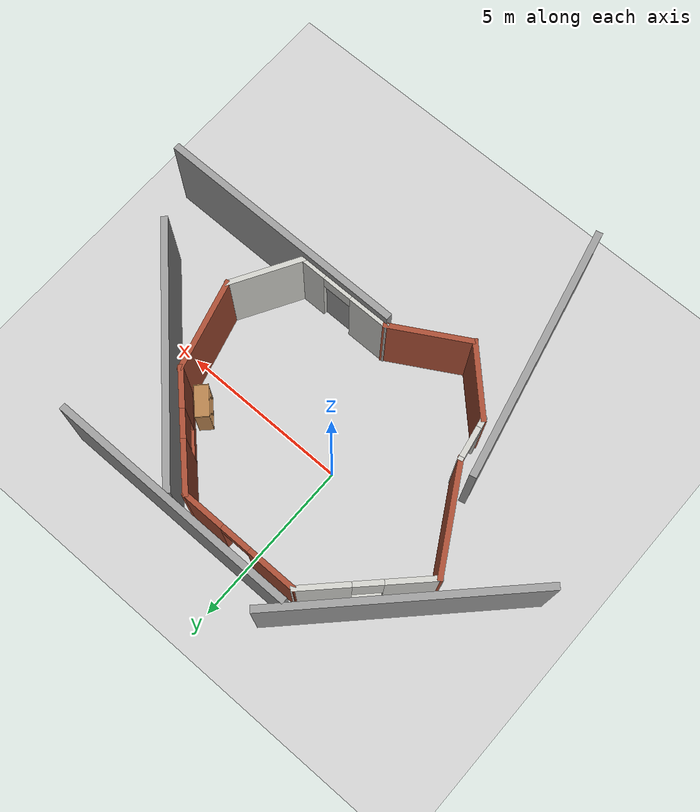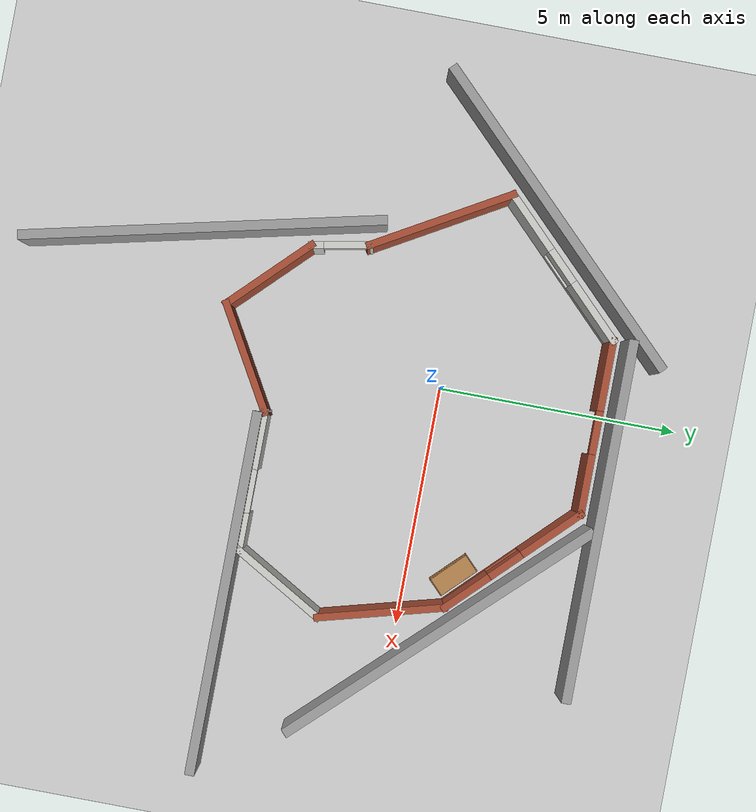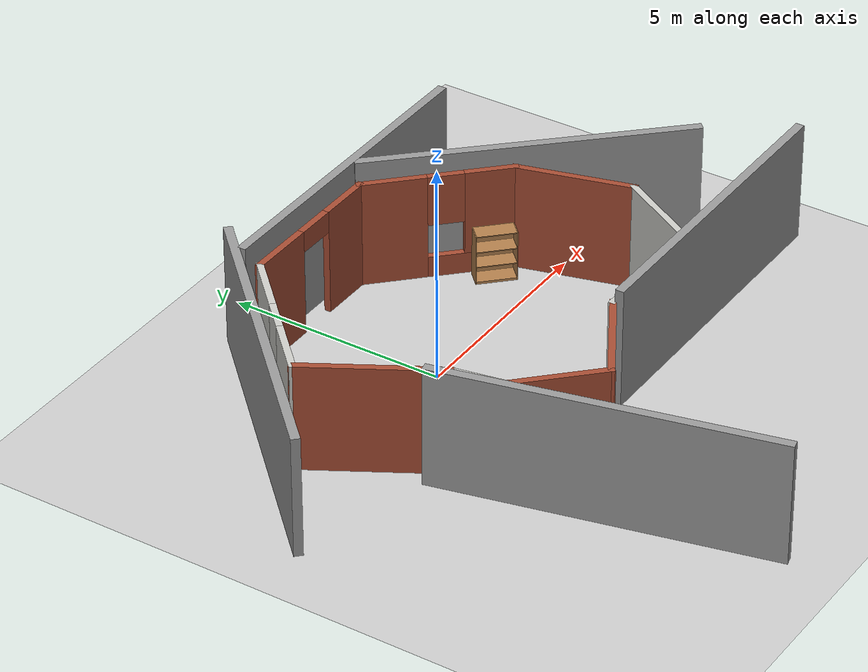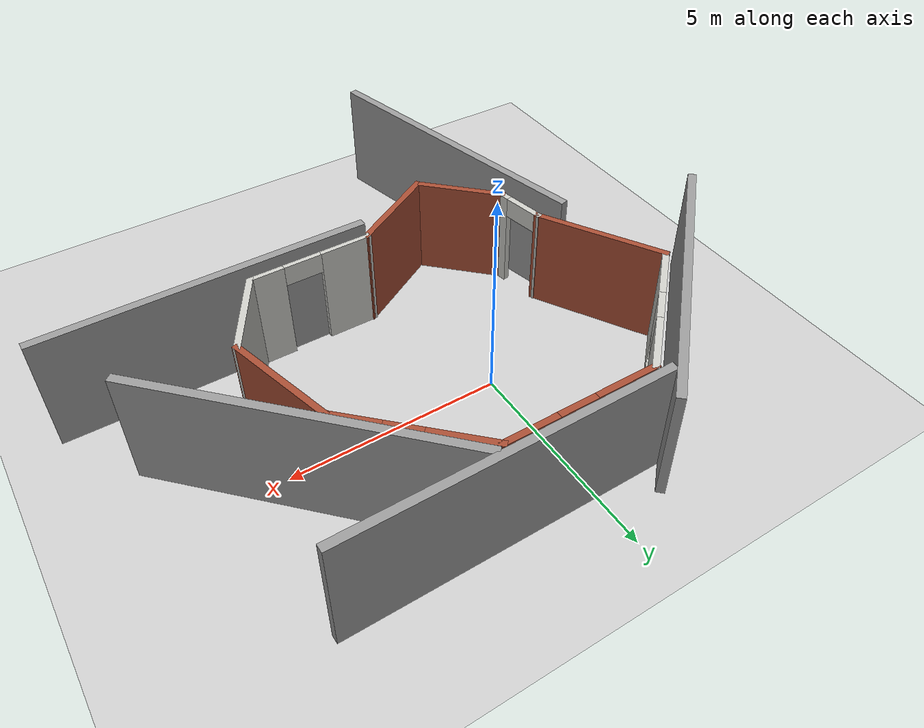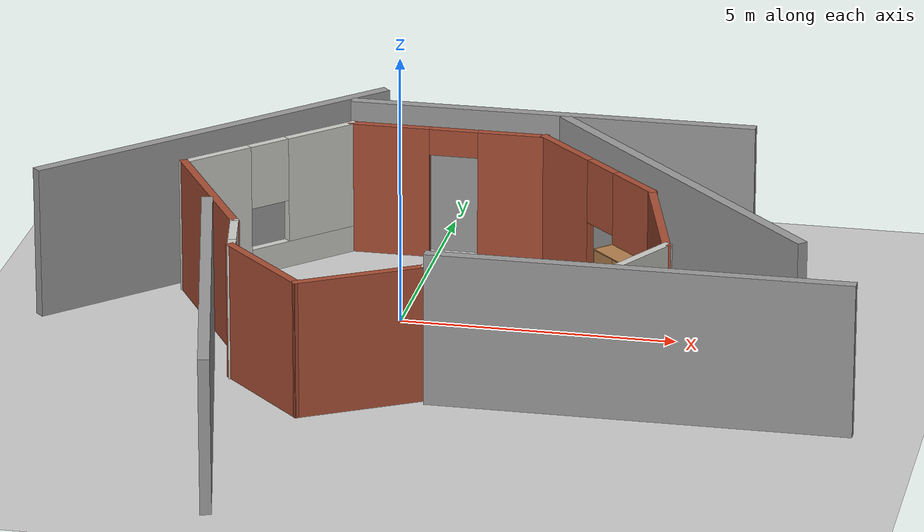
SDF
<sdf version="1.7">
 <world name="default">
  <light name="sun" type="directional">
   <pose>0 0 10 0 -0 0</pose>
   <diffuse>0.8 0.8 0.8 1</diffuse>
   <specular>0.2 0.2 0.2 1</specular>
   <attenuation>
    <range>1000</range>
    <constant>0.9</constant>
    <linear>0.01</linear>
    <quadratic>0.001</quadratic>
   </attenuation>
   <direction>-0.5 0.1 -0.9</direction>
   <spot><inner_angle>0</inner_angle><outer_angle>0</outer_angle><falloff>0</falloff></spot>
  </light>
  <model name="ground_plane">
   <static>1</static>
   <link name="link">
    <collision name="collision">
     <geometry><plane><normal>0 0 1</normal><size>100 100</size></plane></geometry>
     <surface>
      <contact><collide_bitmask>65535</collide_bitmask></contact>
      <friction><ode><mu>100</mu><mu2>50</mu2></ode></friction>
     </surface>
    </collision>
    <visual name="visual">
     <cast_shadows>0</cast_shadows>
     <geometry><plane><normal>0 0 1</normal><size>100 100</size></plane></geometry>
     <material>
      <script><uri>file://media/materials/scripts/gazebo.material</uri><name>Gazebo/Grey</name></script>
     </material>
    </visual>
   </link>
  </model>
  <gravity>0 0 -9.8</gravity>
  <magnetic_field>6e-06 2.3e-05 -4.2e-05</magnetic_field>
  <atmosphere type="adiabatic"/>
  <physics type="ode">
   <max_step_size>0.001</max_step_size>
   <real_time_factor>1</real_time_factor>
   <real_time_update_rate>1000</real_time_update_rate>
  </physics>
  <scene><ambient>0.4 0.4 0.4 1</ambient><background>0.7 0.7 0.7 1</background><shadows>1</shadows></scene>
  <audio><device>default</device></audio>
  <spherical_coordinates>
   <surface_model>EARTH_WGS84</surface_model>
   <latitude_deg>0</latitude_deg>
   <longitude_deg>0</longitude_deg>
   <elevation>0</elevation>
   <heading_deg>0</heading_deg>
  </spherical_coordinates>
  <model name="Untitled">
   <pose>0.46527 -0.68445 0 0 -0 0</pose>
   <link name="Wall_0">
    <collision name="Wall_0_Collision">
     <geometry><box><size>3.25 0.15 2.5</size></box></geometry>
     <pose>0 0 1.25 0 -0 0</pose>
    </collision>
    <visual name="Wall_0_Visual">
     <pose>0 0 1.25 0 -0 0</pose>
     <geometry><box><size>3.25 0.15 2.5</size></box></geometry>
     <material>
      <script><uri>file://media/materials/scripts/gazebo.material</uri><name>Gazebo/Bricks</name></script>
      <ambient>1 1 1 1</ambient>
     </material>
     <meta><layer>0</layer></meta>
    </visual>
    <pose>-3.81685 0.04901 0 0 -0 2.0944</pose>
   </link>
   <link name="Wall_1">
    <pose>-3.31906 2.66414 0 0 -0 0.785398</pose>
    <visual name="Wall_1_Visual_0">
     <pose>-1.15333 0 1.25 0 -0 0</pose>
     <geometry><box><size>1.44334 0.15 2.5</size></box></geometry>
     <material>
      <script><uri>file://media/materials/scripts/gazebo.material</uri><name>Gazebo/CeilingTiled</name></script>
      <ambient>1 1 1 1</ambient>
     </material>
     <meta><layer>0</layer></meta>
    </visual>
    <collision name="Wall_1_Collision_0">
     <geometry><box><size>1.44334 0.15 2.5</size></box></geometry>
     <pose>-1.15333 0 1.25 0 -0 0</pose>
    </collision>
    <visual name="Wall_1_Visual_1">
     <pose>0.72167 0 0.25 0 -0 0</pose>
     <geometry><box><size>2.30666 0.15 0.5</size></box></geometry>
     <material>
      <script><uri>file://media/materials/scripts/gazebo.material</uri><name>Gazebo/CeilingTiled</name></script>
      <ambient>1 1 1 1</ambient>
     </material>
     <meta><layer>0</layer></meta>
    </visual>
    <collision name="Wall_1_Collision_1">
     <geometry><box><size>2.30666 0.15 0.5</size></box></geometry>
     <pose>0.72167 0 0.25 0 -0 0</pose>
    </collision>
    <visual name="Wall_1_Visual_2">
     <pose>1.12167 0 1.5 0 -0 0</pose>
     <geometry><box><size>1.50666 0.15 2</size></box></geometry>
     <material>
      <script><uri>file://media/materials/scripts/gazebo.material</uri><name>Gazebo/CeilingTiled</name></script>
      <ambient>1 1 1 1</ambient>
     </material>
     <meta><layer>0</layer></meta>
    </visual>
    <collision name="Wall_1_Collision_2">
     <geometry><box><size>1.50666 0.15 2</size></box></geometry>
     <pose>1.12167 0 1.5 0 -0 0</pose>
    </collision>
    <visual name="Wall_1_Visual_3">
     <pose>-0.031659 0 1.9 0 -0 0</pose>
     <geometry><box><size>0.8 0.15 1.2</size></box></geometry>
     <material>
      <script><uri>file://media/materials/scripts/gazebo.material</uri><name>Gazebo/CeilingTiled</name></script>
      <ambient>1 1 1 1</ambient>
     </material>
     <meta><layer>0</layer></meta>
    </visual>
    <collision name="Wall_1_Collision_3">
     <geometry><box><size>0.8 0.15 1.2</size></box></geometry>
     <pose>-0.031659 0 1.9 0 -0 0</pose>
    </collision>
   </link>
   <link name="Wall_10">
    <pose>-2.93323 -1.87267 0 0 -0 1.75613</pose>
    <visual name="Wall_10_Visual_0">
     <pose>-0.50504 0 1.25 0 -0 0</pose>
     <geometry><box><size>0.31879 0.15 2.5</size></box></geometry>
     <material>
      <script><uri>file://media/materials/scripts/gazebo.material</uri><name>Gazebo/CeilingTiled</name></script>
      <ambient>1 1 1 1</ambient>
     </material>
     <meta><layer>0</layer></meta>
    </visual>
    <collision name="Wall_10_Collision_0">
     <geometry><box><size>0.31879 0.15 2.5</size></box></geometry>
     <pose>-0.50504 0 1.25 0 -0 0</pose>
    </collision>
    <visual name="Wall_10_Visual_1">
     <pose>0.609395 0 1.25 0 -0 0</pose>
     <geometry><box><size>0.110079 0.15 2.5</size></box></geometry>
     <material>
      <script><uri>file://media/materials/scripts/gazebo.material</uri><name>Gazebo/CeilingTiled</name></script>
      <ambient>1 1 1 1</ambient>
     </material>
     <meta><layer>0</layer></meta>
    </visual>
    <collision name="Wall_10_Collision_1">
     <geometry><box><size>0.110079 0.15 2.5</size></box></geometry>
     <pose>0.609395 0 1.25 0 -0 0</pose>
    </collision>
    <visual name="Wall_10_Visual_2">
     <pose>0.104355 0 2.25 0 -0 0</pose>
     <geometry><box><size>0.9 0.15 0.5</size></box></geometry>
     <material>
      <script><uri>file://media/materials/scripts/gazebo.material</uri><name>Gazebo/CeilingTiled</name></script>
      <ambient>1 1 1 1</ambient>
     </material>
     <meta><layer>0</layer></meta>
    </visual>
    <collision name="Wall_10_Collision_2">
     <geometry><box><size>0.9 0.15 0.5</size></box></geometry>
     <pose>0.104355 0 2.25 0 -0 0</pose>
    </collision>
   </link>
   <link name="Wall_2">
    <pose>-0.246269 3.93693 0 0 -0 0</pose>
    <visual name="Wall_2_Visual_0">
     <pose>-1.11069 0 1.25 0 -0 0</pose>
     <geometry><box><size>1.52861 0.15 2.5</size></box></geometry>
     <material>
      <script><uri>file://media/materials/scripts/gazebo.material</uri><name>Gazebo/Bricks</name></script>
      <ambient>1 1 1 1</ambient>
     </material>
     <meta><layer>0</layer></meta>
    </visual>
    <collision name="Wall_2_Collision_0">
     <geometry><box><size>1.52861 0.15 2.5</size></box></geometry>
     <pose>-1.11069 0 1.25 0 -0 0</pose>
    </collision>
    <visual name="Wall_2_Visual_1">
     <pose>1.21431 0 1.25 0 -0 0</pose>
     <geometry><box><size>1.32139 0.15 2.5</size></box></geometry>
     <material>
      <script><uri>file://media/materials/scripts/gazebo.material</uri><name>Gazebo/Bricks</name></script>
      <ambient>1 1 1 1</ambient>
     </material>
     <meta><layer>0</layer></meta>
    </visual>
    <collision name="Wall_2_Collision_1">
     <geometry><box><size>1.32139 0.15 2.5</size></box></geometry>
     <pose>1.21431 0 1.25 0 -0 0</pose>
    </collision>
    <visual name="Wall_2_Visual_2">
     <pose>0.103612 0 2.25 0 -0 0</pose>
     <geometry><box><size>0.9 0.15 0.5</size></box></geometry>
     <material>
      <script><uri>file://media/materials/scripts/gazebo.material</uri><name>Gazebo/Bricks</name></script>
      <ambient>1 1 1 1</ambient>
     </material>
     <meta><layer>0</layer></meta>
    </visual>
    <collision name="Wall_2_Collision_2">
     <geometry><box><size>0.9 0.15 0.5</size></box></geometry>
     <pose>0.103612 0 2.25 0 -0 0</pose>
    </collision>
   </link>
   <link name="Wall_3">
    <pose>2.73814 2.75253 0 0 -0 -0.785398</pose>
    <visual name="Wall_3_Visual_0">
     <pose>-0.989201 0 1.25 0 -0 0</pose>
     <geometry><box><size>1.5216 0.15 2.5</size></box></geometry>
     <material>
      <script><uri>file://media/materials/scripts/gazebo.material</uri><name>Gazebo/Bricks</name></script>
      <ambient>1 1 1 1</ambient>
     </material>
     <meta><layer>0</layer></meta>
    </visual>
    <collision name="Wall_3_Collision_0">
     <geometry><box><size>1.5216 0.15 2.5</size></box></geometry>
     <pose>-0.989201 0 1.25 0 -0 0</pose>
    </collision>
    <visual name="Wall_3_Visual_1">
     <pose>0.760799 0 0.25 0 -0 0</pose>
     <geometry><box><size>1.9784 0.15 0.5</size></box></geometry>
     <material>
      <script><uri>file://media/materials/scripts/gazebo.material</uri><name>Gazebo/Bricks</name></script>
      <ambient>1 1 1 1</ambient>
     </material>
     <meta><layer>0</layer></meta>
    </visual>
    <collision name="Wall_3_Collision_1">
     <geometry><box><size>1.9784 0.15 0.5</size></box></geometry>
     <pose>0.760799 0 0.25 0 -0 0</pose>
    </collision>
    <visual name="Wall_3_Visual_2">
     <pose>1.1608 0 1.5 0 -0 0</pose>
     <geometry><box><size>1.1784 0.15 2</size></box></geometry>
     <material>
      <script><uri>file://media/materials/scripts/gazebo.material</uri><name>Gazebo/Bricks</name></script>
      <ambient>1 1 1 1</ambient>
     </material>
     <meta><layer>0</layer></meta>
    </visual>
    <collision name="Wall_3_Collision_2">
     <geometry><box><size>1.1784 0.15 2</size></box></geometry>
     <pose>1.1608 0 1.5 0 -0 0</pose>
    </collision>
    <visual name="Wall_3_Visual_3">
     <pose>0.171599 0 1.9 0 -0 0</pose>
     <geometry><box><size>0.8 0.15 1.2</size></box></geometry>
     <material>
      <script><uri>file://media/materials/scripts/gazebo.material</uri><name>Gazebo/Bricks</name></script>
      <ambient>1 1 1 1</ambient>
     </material>
     <meta><layer>0</layer></meta>
    </visual>
    <collision name="Wall_3_Collision_3">
     <geometry><box><size>0.8 0.15 1.2</size></box></geometry>
     <pose>0.171599 0 1.9 0 -0 0</pose>
    </collision>
   </link>
   <link name="Wall_4">
    <collision name="Wall_4_Collision">
     <geometry><box><size>2.75 0.15 2.5</size></box></geometry>
     <pose>0 0 1.25 0 -0 0</pose>
    </collision>
    <visual name="Wall_4_Visual">
     <pose>0 0 1.25 0 -0 0</pose>
     <geometry><box><size>2.75 0.15 2.5</size></box></geometry>
     <material>
      <script><uri>file://media/materials/scripts/gazebo.material</uri><name>Gazebo/Bricks</name></script>
      <ambient>1 1 1 1</ambient>
     </material>
     <meta><layer>0</layer></meta>
    </visual>
    <pose>4.259 0.312423 0 0 -0 -1.309</pose>
   </link>
   <link name="Wall_5">
    <collision name="Wall_5_Collision">
     <geometry><box><size>2.25 0.15 2.5</size></box></geometry>
     <pose>0 0 1.25 0 -0 0</pose>
    </collision>
    <visual name="Wall_5_Visual">
     <pose>0 0 1.25 0 -0 0</pose>
     <geometry><box><size>2.25 0.15 2.5</size></box></geometry>
     <material>
      <script><uri>file://media/materials/scripts/gazebo.material</uri><name>Gazebo/CeilingTiled</name></script>
      <ambient>1 1 1 1</ambient>
     </material>
     <meta><layer>0</layer></meta>
    </visual>
    <pose>4.07047 -1.85261 0 0 -0 -2.0944</pose>
   </link>
   <link name="Wall_6">
    <pose>2.12047 -2.76193 0 0 -0 3.14159</pose>
    <visual name="Wall_6_Visual_0">
     <pose>-1.07632 0 1.25 0 -0 0</pose>
     <geometry><box><size>0.847358 0.15 2.5</size></box></geometry>
     <material>
      <script><uri>file://media/materials/scripts/gazebo.material</uri><name>Gazebo/CeilingTiled</name></script>
      <ambient>1 1 1 1</ambient>
     </material>
     <meta><layer>0</layer></meta>
    </visual>
    <collision name="Wall_6_Collision_0">
     <geometry><box><size>0.847358 0.15 2.5</size></box></geometry>
     <pose>-1.07632 0 1.25 0 -0 0</pose>
    </collision>
    <visual name="Wall_6_Visual_1">
     <pose>0.873679 0 1.25 0 -0 0</pose>
     <geometry><box><size>1.25264 0.15 2.5</size></box></geometry>
     <material>
      <script><uri>file://media/materials/scripts/gazebo.material</uri><name>Gazebo/CeilingTiled</name></script>
      <ambient>1 1 1 1</ambient>
     </material>
     <meta><layer>0</layer></meta>
    </visual>
    <collision name="Wall_6_Collision_1">
     <geometry><box><size>1.25264 0.15 2.5</size></box></geometry>
     <pose>0.873679 0 1.25 0 -0 0</pose>
    </collision>
    <visual name="Wall_6_Visual_2">
     <pose>-0.202642 0 2.25 0 -0 0</pose>
     <geometry><box><size>0.9 0.15 0.5</size></box></geometry>
     <material>
      <script><uri>file://media/materials/scripts/gazebo.material</uri><name>Gazebo/CeilingTiled</name></script>
      <ambient>1 1 1 1</ambient>
     </material>
     <meta><layer>0</layer></meta>
    </visual>
    <collision name="Wall_6_Collision_2">
     <geometry><box><size>0.9 0.15 0.5</size></box></geometry>
     <pose>-0.202642 0 2.25 0 -0 0</pose>
    </collision>
   </link>
   <link name="Wall_8">
    <collision name="Wall_8_Collision">
     <geometry><box><size>2.5 0.15 2.5</size></box></geometry>
     <pose>0 0 1.25 0 -0 0</pose>
    </collision>
    <visual name="Wall_8_Visual">
     <pose>0 0 1.25 0 -0 0</pose>
     <geometry><box><size>2.5 0.15 2.5</size></box></geometry>
     <material>
      <script><uri>file://media/materials/scripts/gazebo.material</uri><name>Gazebo/Bricks</name></script>
      <ambient>1 1 1 1</ambient>
     </material>
     <meta><layer>0</layer></meta>
    </visual>
    <pose>-0.322112 -3.34943 0 0 -0 -2.61799</pose>
   </link>
   <link name="Wall_9">
    <collision name="Wall_9_Collision">
     <geometry><box><size>2.25 0.15 2.5</size></box></geometry>
     <pose>0 0 1.25 0 -0 0</pose>
    </collision>
    <visual name="Wall_9_Visual">
     <pose>0 0 1.25 0 -0 0</pose>
     <geometry><box><size>2.25 0.15 2.5</size></box></geometry>
     <material>
      <script><uri>file://media/materials/scripts/gazebo.material</uri><name>Gazebo/Bricks</name></script>
      <ambient>1 1 1 1</ambient>
     </material>
     <meta><layer>0</layer></meta>
    </visual>
    <pose>-2.08215 -3.19447 0 0 -0 2.35619</pose>
   </link>
   <static>1</static>
  </model>
  <model name="bookshelf">
   <static>1</static>
   <link name="link">
    <inertial><mass>1</mass></inertial>
    <collision name="back">
     <pose>0 0.005 0.6 0 -0 0</pose>
     <geometry><box><size>0.9 0.01 1.2</size></box></geometry>
    </collision>
    <visual name="visual1">
     <pose>0 0.005 0.6 0 -0 0</pose>
     <geometry><box><size>0.9 0.01 1.2</size></box></geometry>
     <material>
      <script><uri>file://media/materials/scripts/gazebo.material</uri><name>Gazebo/Wood</name></script>
     </material>
    </visual>
    <collision name="left_side">
     <pose>0.45 -0.195 0.6 0 -0 0</pose>
     <geometry><box><size>0.02 0.4 1.2</size></box></geometry>
    </collision>
    <visual name="visual2">
     <pose>0.45 -0.195 0.6 0 -0 0</pose>
     <geometry><box><size>0.02 0.4 1.2</size></box></geometry>
     <material>
      <script><uri>file://media/materials/scripts/gazebo.material</uri><name>Gazebo/Wood</name></script>
     </material>
    </visual>
    <collision name="right_side">
     <pose>-0.45 -0.195 0.6 0 -0 0</pose>
     <geometry><box><size>0.02 0.4 1.2</size></box></geometry>
    </collision>
    <visual name="visual3">
     <pose>-0.45 -0.195 0.6 0 -0 0</pose>
     <geometry><box><size>0.02 0.4 1.2</size></box></geometry>
     <material>
      <script><uri>file://media/materials/scripts/gazebo.material</uri><name>Gazebo/Wood</name></script>
     </material>
    </visual>
    <collision name="bottom">
     <pose>0 -0.195 0.03 0 -0 0</pose>
     <geometry><box><size>0.88 0.4 0.06</size></box></geometry>
    </collision>
    <visual name="visual4">
     <pose>0 -0.195 0.03 0 -0 0</pose>
     <geometry><box><size>0.88 0.4 0.06</size></box></geometry>
     <material>
      <script><uri>file://media/materials/scripts/gazebo.material</uri><name>Gazebo/Wood</name></script>
     </material>
    </visual>
    <collision name="top">
     <pose>0 -0.195 1.19 0 -0 0</pose>
     <geometry><box><size>0.88 0.4 0.02</size></box></geometry>
    </collision>
    <visual name="visual5">
     <pose>0 -0.195 1.19 0 -0 0</pose>
     <geometry><box><size>0.88 0.4 0.02</size></box></geometry>
     <material>
      <script><uri>file://media/materials/scripts/gazebo.material</uri><name>Gazebo/Wood</name></script>
     </material>
    </visual>
    <collision name="low_shelf">
     <pose>0 -0.195 0.43 0 -0 0</pose>
     <geometry><box><size>0.88 0.4 0.02</size></box></geometry>
    </collision>
    <visual name="visual6">
     <pose>0 -0.195 0.43 0 -0 0</pose>
     <geometry><box><size>0.88 0.4 0.02</size></box></geometry>
     <material>
      <script><uri>file://media/materials/scripts/gazebo.material</uri><name>Gazebo/Wood</name></script>
     </material>
    </visual>
    <collision name="high_shelf">
     <pose>0 -0.195 0.8 0 -0 0</pose>
     <geometry><box><size>0.88 0.4 0.02</size></box></geometry>
    </collision>
    <visual name="visual7">
     <pose>0 -0.195 0.8 0 -0 0</pose>
     <geometry><box><size>0.88 0.4 0.02</size></box></geometry>
     <material>
      <script><uri>file://media/materials/scripts/gazebo.material</uri><name>Gazebo/Wood</name></script>
     </material>
    </visual>
   </link>
   <pose>3.89488 1.11719 0 0 0 -0.789345</pose>
  </model>
  <model name="grey_wall">
   <static>1</static>
   <link name="link">
    <pose>0 0 1.4 0 -0 0</pose>
    <collision name="collision"><geometry><box><size>7.5 0.2 2.8</size></box></geometry></collision>
    <visual name="visual">
     <cast_shadows>0</cast_shadows>
     <geometry><box><size>7.5 0.2 2.8</size></box></geometry>
     <material>
      <script>
       <uri>model://grey_wall/materials/scripts</uri>
       <uri>model://grey_wall/materials/textures</uri>
       <name>vrc/grey_wall</name>
      </script>
     </material>
    </visual>
   </link>
   <pose>4.91395 -3.58204 0 0 -0 0</pose>
  </model>
  <model name="grey_wall_0">
   <static>1</static>
   <link name="link">
    <pose>0 0 1.4 0 -0 0</pose>
    <collision name="collision"><geometry><box><size>7.5 0.2 2.8</size></box></geometry></collision>
    <visual name="visual">
     <cast_shadows>0</cast_shadows>
     <geometry><box><size>7.5 0.2 2.8</size></box></geometry>
     <material>
      <script>
       <uri>model://grey_wall/materials/scripts</uri>
       <uri>model://grey_wall/materials/textures</uri>
       <name>vrc/grey_wall</name>
      </script>
     </material>
    </visual>
   </link>
   <pose>-2.28975 -5.36748 0 0 0 -1.34527</pose>
  </model>
  <model name="grey_wall_1">
   <static>1</static>
   <link name="link">
    <pose>0 0 1.4 0 -0 0</pose>
    <collision name="collision"><geometry><box><size>7.5 0.2 2.8</size></box></geometry></collision>
    <visual name="visual">
     <cast_shadows>0</cast_shadows>
     <geometry><box><size>7.5 0.2 2.8</size></box></geometry>
     <material>
      <script>
       <uri>model://grey_wall/materials/scripts</uri>
       <uri>model://grey_wall/materials/textures</uri>
       <name>vrc/grey_wall</name>
      </script>
     </material>
    </visual>
   </link>
   <pose>2.08102 3.64894 0 0 -0 0</pose>
  </model>
  <model name="grey_wall_2">
   <static>1</static>
   <link name="link">
    <pose>0 0 1.4 0 -0 0</pose>
    <collision name="collision"><geometry><box><size>7.5 0.2 2.8</size></box></geometry></collision>
    <visual name="visual">
     <cast_shadows>0</cast_shadows>
     <geometry><box><size>7.5 0.2 2.8</size></box></geometry>
     <material>
      <script>
       <uri>model://grey_wall/materials/scripts</uri>
       <uri>model://grey_wall/materials/textures</uri>
       <name>vrc/grey_wall</name>
      </script>
     </material>
    </visual>
   </link>
   <pose>-3.80117 1.67684 0 0 -0 0.790653</pose>
  </model>
  <model name="grey_wall_3">
   <static>1</static>
   <link name="link">
    <pose>0 0 1.4 0 -0 0</pose>
    <collision name="collision"><geometry><box><size>7.5 0.2 2.8</size></box></geometry></collision>
    <visual name="visual">
     <cast_shadows>0</cast_shadows>
     <geometry><box><size>7.5 0.2 2.8</size></box></geometry>
     <material>
      <script>
       <uri>model://grey_wall/materials/scripts</uri>
       <uri>model://grey_wall/materials/textures</uri>
       <name>vrc/grey_wall</name>
      </script>
     </material>
    </visual>
   </link>
   <pose>4.89769 0.857008 0 0 0 -0.808559</pose>
  </model>
 </world>
</sdf>
